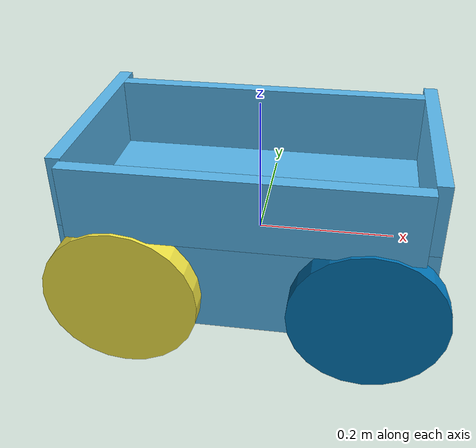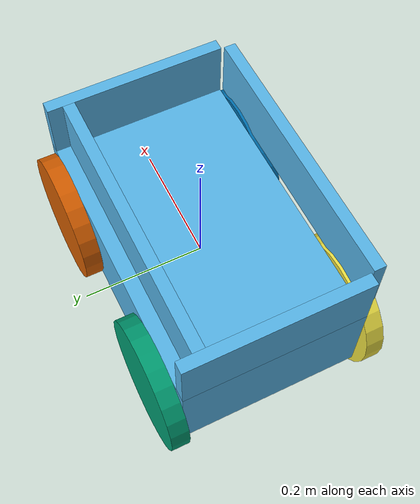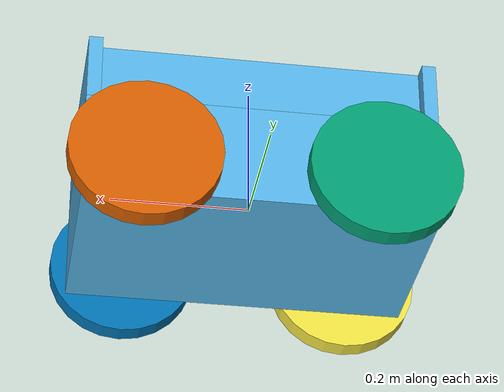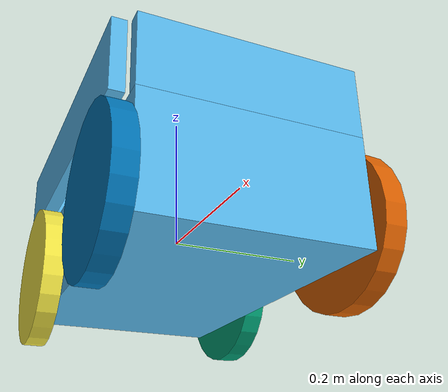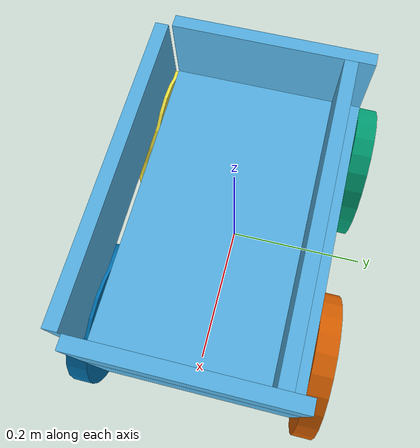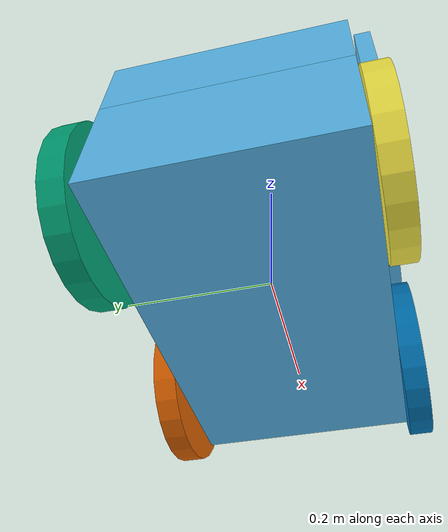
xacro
<?xml version='1.0'?>

<robot name="vehicle" xmlns:xacro="http://www.ros.org/wiki/xacro">

  <xacro:include filename="$(find simulation)/models/vehicle/vehicle.gazebo" />
  <xacro:include filename="$(find simulation)/models/vehicle/materials.xacro"   />
  <xacro:include filename="$(find simulation)/models/vehicle/macros.xacro"      />
  <xacro:include filename="$(find simulation)/models/vehicle/parameter.xacro"   />

  <link name='base_link'>
    <pose>0 0 0 0 0 0</pose>
  </link>
  <joint type="fixed" name="base_link_to_chassis">
    <child link="chassis_link"/>
    <parent link="base_link"/>
  </joint>

  <link name='chassis_link'>
    <pose>0 0 0 0 0 0</pose>

    <inertial>
      <mass value="${m_chassis}"/>
      <xacro:box_inertia m="${m_chassis}" x="${x_chassis}" y="${y_chassis}" z="${z_chassis}"/>
    </inertial>

    <collision name='collision'>
      <origin xyz="0 0 0" rpy=" 0 0 0"/>
      <geometry>
        <box size="${x_chassis} ${y_chassis} ${z_chassis}"/>
      </geometry>
    </collision>

    <visual name='base_link_visual'>
	  <origin xyz="0 0 0" rpy=" 0 0 0"/>
      <geometry>
        <box size="${x_chassis} ${y_chassis} ${z_chassis}"/>
      </geometry>
    </visual>

    <collision name='wall11_collision'>
      <origin xyz="${-(x_chassis/2)+(wall_thickness/2)} 0 ${(z_chassis/2)+(wall_height/2)} " rpy=" 0 0 0"/>
      <geometry>
        <box size="${wall_thickness} ${y_chassis} ${wall_height}"/>
      </geometry>
    </collision>

    <visual name='wall11_visual'>
	  <origin xyz="${-(x_chassis/2)+(wall_thickness/2)} 0 ${(z_chassis/2)+(wall_height/2)}" rpy=" 0 0 0"/>
      <geometry>
        <box size="${wall_thickness} ${y_chassis} ${wall_height}"/>
      </geometry>
    </visual>

    <collision name='wall12_collision'>
      <origin xyz="${(x_chassis/2)-(wall_thickness/2)} 0 ${(z_chassis/2)+(wall_height/2)}" rpy=" 0 0 0"/>
      <geometry>
        <box size="${wall_thickness} ${y_chassis} ${wall_height}"/>
      </geometry>
    </collision>

    <visual name='wall12_visual'>
	    <origin xyz="${(x_chassis/2)-(wall_thickness/2)} 0 ${(z_chassis/2)+(wall_height/2)}" rpy=" 0 0 0"/>
      <geometry>
        <box size="${wall_thickness} ${y_chassis} ${wall_height}"/>
      </geometry>
    </visual>

    <collision name='wall21_collision'>
      <origin xyz="0 ${(y_chassis/2)-(wall_thickness/2)-wall_offset} ${(z_chassis/2)+(wall_height/2)}" rpy=" 0 0 0"/>
      <geometry>
        <box size="${x_chassis-2*wall_thickness} ${wall_thickness} ${wall_height}"/>
      </geometry>
    </collision>

    <visual name='wall21_visual'>
	  <origin xyz="0 ${(y_chassis/2)-(wall_thickness/2)-wall_offset} ${(z_chassis/2)+(wall_height/2)}" rpy=" 0 0 0"/>
      <geometry>
        <box size="${x_chassis-2*wall_thickness} ${wall_thickness} ${wall_height}"/>
      </geometry>
    </visual>

    <collision name='wall22_collision'>
      <origin xyz="0 ${-(y_chassis/2)+(wall_thickness/2)-wall_offset} ${(z_chassis/2)+(wall_height/2)}" rpy=" 0 0 0"/>
      <geometry>
        <box size="${x_chassis-2*wall_thickness} ${wall_thickness} ${wall_height}"/>
      </geometry>
    </collision>

    <visual name='wall22_visual'>
	  <origin xyz="0 ${-(y_chassis/2)+(wall_thickness/2)-wall_offset} ${(z_chassis/2)+(wall_height/2)}" rpy=" 0 0 0"/>
      <geometry>
        <box size="${x_chassis-2*wall_thickness} ${wall_thickness} ${wall_height}"/>
      </geometry>
    </visual>
  </link>

  <link name="left_wheel">
    <collision name="collision">
      <origin xyz="0 0 0" rpy="0 1.5707 1.5707"/>
      <geometry>
        <cylinder radius="${r_wheel}" length="${h_wheel}"/>
      </geometry>
      <surface>
        <friction>
          <ode>
            <mu>1.0</mu>
            <mu2>1.0</mu2>
            <slip1>0.0</slip1>
            <slip2>0.0</slip2>
          </ode>
        </friction>
      </surface>
    </collision>
    <visual name="left_wheel_visual">
      <origin xyz="0 0 0" rpy="0 1.5707 1.5707"/>
      <geometry>
        <cylinder radius="${r_wheel}" length="${h_wheel}"/>
      </geometry>
    </visual>
    <inertial>
      <origin xyz="0 0 0" rpy="0 1.5707 1.5707"/>
      <mass value="${m_wheel}"/>
      <cylinder_inertia m="${m_wheel}" r="${r_wheel}" h="${h_wheel}"/>
      <xacro:cylinder_inertia m="${m_wheel}" r="${r_wheel}" h="${h_wheel}"/>
    </inertial>
  </link>

  <link name="right_wheel">
    <collision name="collision">
      <origin xyz="0 0 0" rpy="0 1.5707 1.5707"/>
      <geometry>
        <cylinder radius="${r_wheel}" length="${h_wheel}"/>
      </geometry>
      <surface>
        <friction>
          <ode>
            <mu>1.0</mu>
            <mu2>1.0</mu2>
            <slip1>0.0</slip1>
            <slip2>0.0</slip2>
          </ode>
        </friction>
      </surface>
    </collision>
    <visual name="right_wheel_visual">
      <origin xyz="0 0 0" rpy="0 1.5707 1.5707"/>
      <geometry>
        <cylinder radius="${r_wheel}" length="${h_wheel}"/>
      </geometry>
    </visual>
    <inertial>
      <origin xyz="0 0 0" rpy="0 1.5707 1.5707"/>
      <mass value="${m_wheel}"/>
      <cylinder_inertia m="${m_wheel}" r="${r_wheel}" h="${h_wheel}"/>
      <xacro:cylinder_inertia m="${m_wheel}" r="${r_wheel}" h="${h_wheel}"/>
    </inertial>
  </link>

  <link name="right_wheel1">
    <collision name="collision">
      <origin xyz="0 0 0" rpy="0 1.5707 1.5707"/>
      <geometry>
        <cylinder radius="${r_wheel}" length="${h_wheel}"/>
      </geometry>
      <surface>
        <friction>
          <ode>
            <mu>1.0</mu>
            <mu2>1.0</mu2>
            <slip1>0.0</slip1>
            <slip2>0.0</slip2>
          </ode>
        </friction>
      </surface>
    </collision>
    <visual name="right_wheel_visual">
      <origin xyz="0 0 0" rpy="0 1.5707 1.5707"/>
      <geometry>
        <cylinder radius="${r_wheel}" length="${h_wheel}"/>
      </geometry>
    </visual>
    <inertial>
      <origin xyz="0 0 0" rpy="0 1.5707 1.5707"/>
      <mass value="${m_wheel}"/>
      <cylinder_inertia m="${m_wheel}" r="${r_wheel}" h="${h_wheel}"/>
      <xacro:cylinder_inertia m="${m_wheel}" r="${r_wheel}" h="${h_wheel}"/>
    </inertial>
  </link>

  <link name="left_wheel1">
    <collision name="collision">
      <origin xyz="0 0 0" rpy="0 1.5707 1.5707"/>
      <geometry>
        <cylinder radius="${r_wheel}" length="${h_wheel}"/>
      </geometry>
      <surface>
        <friction>
          <ode>
            <mu>1.0</mu>
            <mu2>1.0</mu2>
            <slip1>0.0</slip1>
            <slip2>0.0</slip2>
          </ode>
        </friction>
      </surface>
    </collision>
    <visual name="left_wheel_visual">
      <origin xyz="0 0 0" rpy="0 1.5707 1.5707"/>
      <geometry>
        <cylinder radius="${r_wheel}" length="${h_wheel}"/>
      </geometry>
    </visual>
    <inertial>
      <origin xyz="0 0 0" rpy="0 1.5707 1.5707"/>
      <mass value="${m_wheel}"/>
      <cylinder_inertia m="${m_wheel}" r="${r_wheel}" h="${h_wheel}"/>
      <xacro:cylinder_inertia m="${m_wheel}" r="${r_wheel}" h="${h_wheel}"/>
    </inertial>
  </link>

  <joint type="continuous" name="left_wheel_hinge">
    <origin xyz="${-x_chassis/3} ${y_chassis/2+h_wheel/2} ${r_wheel/2-z_chassis/2}" rpy="0 0 0"/>
    <child link="left_wheel"/>
    <parent link="base_link"/>
    <axis xyz="0 1 0" rpy="0 0 0"/>
    <limit effort="100" velocity="100"/>
    <joint_properties damping="0.0" friction="0.0"/>
  </joint>

  <joint type="continuous" name="left_wheel_hinge1">
    <origin xyz="${+x_chassis/3} ${y_chassis/2+h_wheel/2} ${r_wheel/2-z_chassis/2}" rpy="0 0 0"/>
    <child link="left_wheel1"/>
    <parent link="base_link"/>
    <axis xyz="0 1 0" rpy="0 0 0"/>
    <limit effort="100" velocity="100"/>
    <joint_properties damping="0.0" friction="0.0"/>
  </joint>

  <joint type="continuous" name="right_wheel_hinge">
    <origin xyz="${-x_chassis/3} ${-y_chassis/2-h_wheel/2} ${r_wheel/2-z_chassis/2}" rpy="0 0 0"/>
    <child link="right_wheel"/>
    <parent link="base_link"/>
    <axis xyz="0 1 0" rpy="0 0 0"/>
    <limit effort="100" velocity="100"/>
    <joint_properties damping="0.0" friction="0.0"/>
  </joint>

  <joint type="continuous" name="right_wheel_hinge1">
    <origin xyz="${+x_chassis/3} ${-y_chassis/2-h_wheel/2} ${r_wheel/2-z_chassis/2}" rpy="0 0 0"/>
    <child link="right_wheel1"/>
    <parent link="base_link"/>
    <axis xyz="0 1 0" rpy="0 0 0"/>
    <limit effort="100" velocity="100"/>
    <joint_properties damping="0.0" friction="0.0"/>
  </joint>

</robot>

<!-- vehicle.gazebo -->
<robot xmlns:xacro="http://www.ros.org/wiki/xacro">
  <xacro:include filename="$(find simulation)/models/vehicle/parameter.xacro" />

  <!-- TODO: Add same update rates over parameter setting and define all parameters in config -->
  <!-- Differential Drive controller from Gazebo, TODO: Add noise by adapting the plugin -->
  <gazebo>
    <plugin name="differential_drive_controller" filename="libgazebo_ros_diff_drive.so">
      <alwaysOn>true</alwaysOn>
      <updateRate>20</updateRate>
      <leftJoint>left_wheel_hinge</leftJoint>
      <rightJoint>right_wheel_hinge</rightJoint>
      <wheelSeparation>${L_wheel*2}</wheelSeparation>
      <wheelDiameter>${r_wheel*2}</wheelDiameter>
      <wheelTorque>${torque_wheel}</wheelTorque>
      <commandTopic>cmd_vel</commandTopic>
      <odometryTopic>odom</odometryTopic>
      <odometryFrame>odom_link</odometryFrame>
      <robotBaseFrame>base_link</robotBaseFrame>
      <legacyMode>false</legacyMode>
    </plugin>
  </gazebo>

   <!-- Paint the robot -->
  <gazebo reference="base_link">
    <material>Gazebo/Orange</material>
  </gazebo>

</robot>

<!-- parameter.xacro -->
<robot xmlns:xacro="http://www.ros.org/wiki/xacro">

  <!-- Define parameter for the differential drive robot -->
  <!-- Parameter for the chassis, size [m] and mass [kg] -->
  <xacro:property name="x_chassis" value="0.5" />
  <xacro:property name="y_chassis" value="0.3" />
  <xacro:property name="z_chassis" value="0.15" />
  <xacro:property name="m_chassis" value="10.0" />

  <!-- Parameter for the wheels, radius [m], height [m], mass [kg], torque [Nm], wheelbase [m] -->
  <xacro:property name="r_wheel" value="0.1075"/>
  <xacro:property name="h_wheel" value="0.03" />
  <xacro:property name="m_wheel" value="3.0" />
  <xacro:property name="torque_wheel" value="10" />
  <xacro:property name="L_wheel" value="0.1788" />

  <xacro:property name="wall_thickness" value="0.02" />
  <xacro:property name="wall_height" value="0.1" />
  <xacro:property name="wall_offset" value="0.025" />
  <xacro:property name="wall_mass1" value="0.6" />
  <xacro:property name="wall_mass2" value="0.9" />

</robot>

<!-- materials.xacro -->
<robot xmlns:xacro="http://www.ros.org/wiki/xacro">

<material name="orange">
    <color rgba="${255/255} ${108/255} ${10/255} 1.0"/>
  </material>

</robot>

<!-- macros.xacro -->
<robot xmlns:xacro="http://www.ros.org/wiki/xacro">

  <xacro:macro name="box_inertia" params="m x y z">
      <inertia
        ixx="${m*(y*y+z*z)/12}" ixy = "0" ixz = "0"
        iyy="${m*(x*x+z*z)/12}" iyz = "0"
        izz="${m*(x*x+y*y)/12}"
      />
  </xacro:macro>

  <xacro:macro name="cylinder_inertia" params="m r h">
    <inertia
      ixx="${m*(3*r*r+h*h)/12}" ixy = "0" ixz = "0"
      iyy="${m*(3*r*r+h*h)/12}" iyz = "0"
      izz="${m*r*r/2}"
    />
  </xacro:macro>

</robot>
